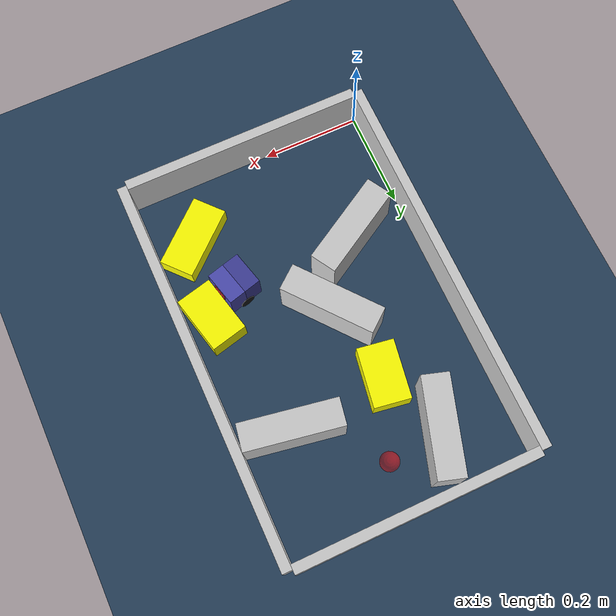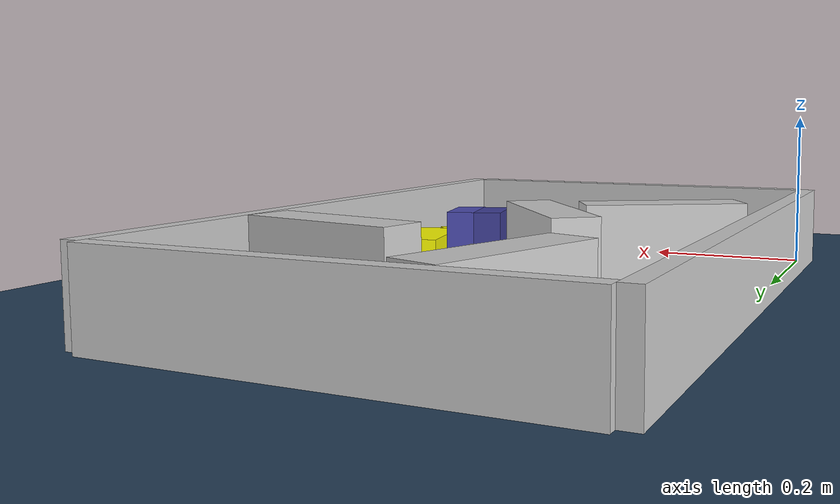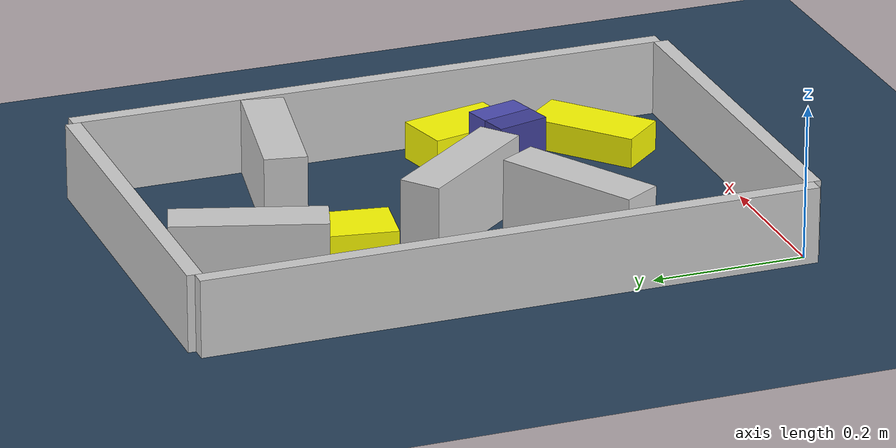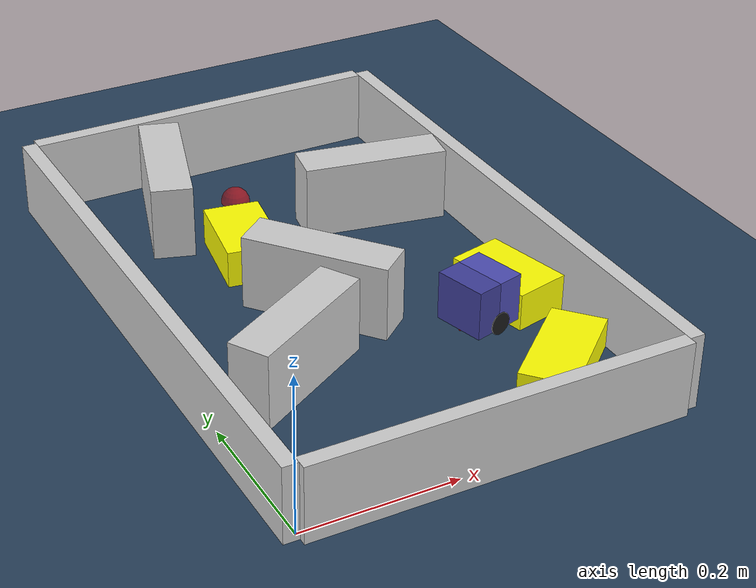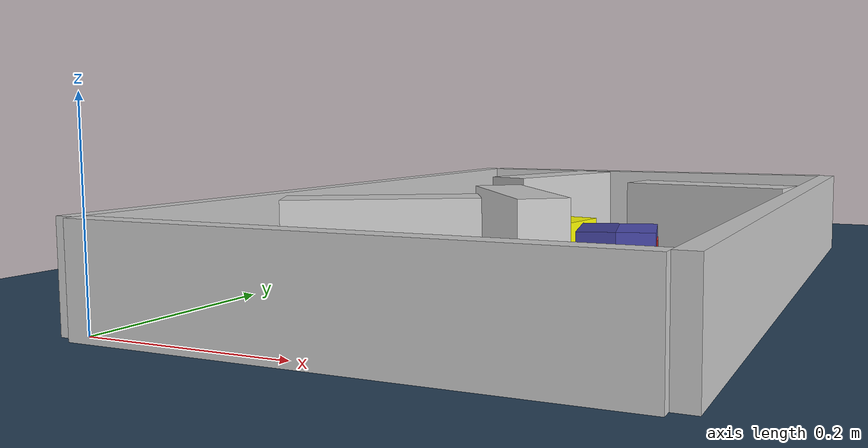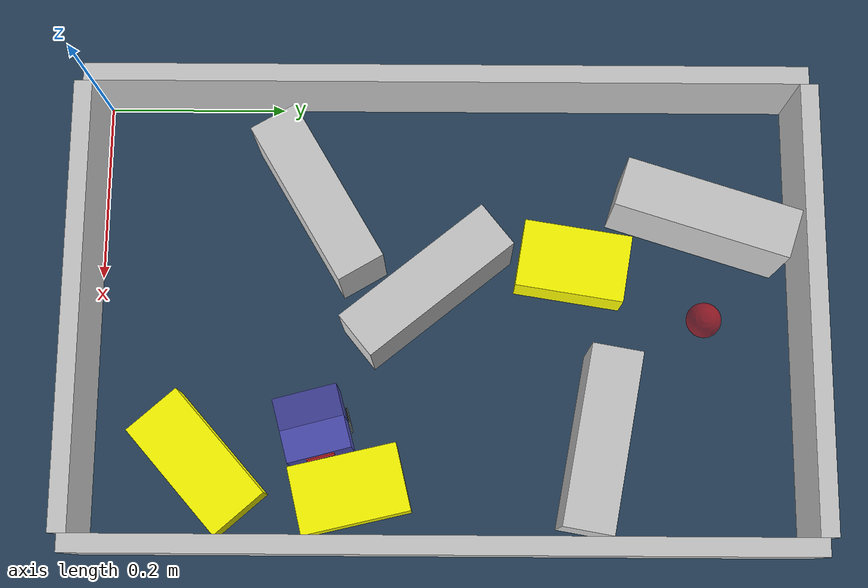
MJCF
<?xml version='1.0' encoding='utf-8'?>
<mujoco model="real_buildable">
  <compiler angle="degree" />
  <option timestep="0.002" integrator="implicitfast" iterations="100" cone="elliptic" />
  <default>
    <geom density="1" />
  </default>
  <asset>
    <texture builtin="gradient" height="3072" rgb1="0.3 0.5 0.7" rgb2="0 0 0" type="skybox" width="512" />
    <texture builtin="checker" height="300" mark="edge" markrgb="0.8 0.8 0.8" name="groundplane" rgb1="0.2 0.3 0.4" rgb2="0.1 0.2 0.3" type="2d" width="300" />
    <material name="groundplane" reflectance="0.2" texrepeat="5 5" texture="groundplane" texuniform="true" />
  </asset>
  <worldbody>
    <light dir="0 0 -1" directional="true" pos="0 0 1.5" />
    <geom name="floor" type="plane" condim="4" friction="0.5 0.005 0.001" material="groundplane" size="0 0 0.05" />
    <body name="walls">
      <geom name="wall_boundary_left" type="box" condim="4" friction="1.0 0.005 0.0001" rgba="0.8 0.8 0.8 1" pos="-0.010000 0.387500 0.050000" euler="0 0 0.000000" size="0.010000 0.397500 0.050000" />
      <geom name="wall_boundary_right" type="box" condim="4" friction="1.0 0.005 0.0001" rgba="0.8 0.8 0.8 1" pos="0.500000 0.387500 0.050000" euler="0 0 0.000000" size="0.010000 0.397500 0.050000" />
      <geom name="wall_boundary_bottom" type="box" condim="4" friction="1.0 0.005 0.0001" rgba="0.8 0.8 0.8 1" pos="0.245000 -0.010000 0.050000" euler="0 0 0.000000" size="0.245000 0.010000 0.050000" />
      <geom name="wall_boundary_top" type="box" condim="4" friction="1.0 0.005 0.0001" rgba="0.8 0.8 0.8 1" pos="0.245000 0.785000 0.050000" euler="0 0 0.000000" size="0.245000 0.010000 0.050000" />
      <geom name="wall_inner_1" type="box" condim="4" friction="1.0 0.005 0.0001" rgba="0.8 0.8 0.8 1" pos="0.124435 0.248392 0.050000" euler="0 0 30.483484" size="0.097500 0.027500 0.050000" />
      <geom name="wall_inner_2" type="box" condim="4" friction="1.0 0.005 0.0001" rgba="0.8 0.8 0.8 1" pos="0.221052 0.368219 0.050000" euler="0 0 -51.091054" size="0.097500 0.027500 0.050000" />
      <geom name="wall_inner_3" type="box" condim="4" friction="1.0 0.005 0.0001" rgba="0.8 0.8 0.8 1" pos="0.389000 0.554000 0.050000" euler="0 0 169.900000" size="0.097500 0.027500 0.050000" />
      <geom name="wall_inner_4" type="box" condim="4" friction="1.0 0.005 0.0001" rgba="0.8 0.8 0.8 1" pos="0.140000 0.671000 0.050000" euler="0 0 72.500000" size="0.097500 0.027500 0.050000" />
    </body>
    <body name="car" pos="0.37307877193951461 0.24741283493073193 0.01" quat="0.99171061167532248 0 0 0.12849148878644773">
      <freejoint name="car_freejoint" />
      <inertial pos="0 0 0.0375" mass="0.35" diaginertia="0.000266 0.000266 0.000286" />
      <geom name="front_chassis_collision" type="box" pos="0.0175 0 0.0375" size="0.0175 0.035 0.0325" rgba="0.3 0.3 0.7 1" />
      <geom name="rear_chassis_collision" type="box" pos="-0.0175 0 0.0375" size="0.0175 0.035 0.0325" rgba="0.25 0.25 0.6 1" />
      <geom name="front_marker" type="box" pos="0.034 0 0.0505" size="0.002 0.015 0.01" rgba="1 0.2 0.2 1" contype="0" conaffinity="0" />
      <body name="rear_support_body" pos="-0.03 0 0.0025">
        <joint name="rear_caster_joint" type="ball" damping="0.0001" />
        <inertial pos="0 0 0" mass="0.025" diaginertia="0.000001 0.000001 0.000001" />
        <geom name="rear_support" type="sphere" pos="0 0 0" size="0.0025" friction="0 0 0" rgba="0.7 0.1 0.1 1" />
      </body>
      <body name="front_support_body" pos="0.03 0 0.0025">
        <joint name="front_caster_joint" type="ball" damping="0.0001" />
        <inertial pos="0 0 0" mass="0.025" diaginertia="0.000001 0.000001 0.000001" />
        <geom name="front_support" type="sphere" pos="0 0 0" size="0.0025" friction="0 0 0" rgba="0.1 0.7 0.1 1" />
      </body>
      <body name="left_wheel" pos="0 0.0375 0.015">
        <inertial pos="0 0 0" mass="0.05" diaginertia="0.000003 0.000006 0.000003" />
        <joint name="left_wheel_joint" type="hinge" axis="0 1 0" damping="0.01" armature="0.0001" />
        <geom name="left_wheel_collision" type="cylinder" size="0.015 0.0005" euler="90 0 0" rgba="0.1 0.1 0.1 1" />
      </body>
      <body name="right_wheel" pos="0 -0.0375 0.015">
        <inertial pos="0 0 0" mass="0.05" diaginertia="0.000003 0.000006 0.000003" />
        <joint name="right_wheel_joint" type="hinge" axis="0 1 0" damping="0.01" armature="0.0001" />
        <geom name="right_wheel_collision" type="cylinder" size="0.015 0.0005" euler="90 0 0" rgba="0.1 0.1 0.1 1" />
      </body>
    </body>
    <body name="obstacle_0_movable">
      <geom name="obstacle_0_movable" condim="4" pos="0.43980687843245642 0.28589676806350139 0.025000000000000001" friction="1 0.005 0.0001" rgba="1 1 0 1" size="0.037500 0.060000 0.025000" type="box" mass="0.1" quat="0.9933336611777337 0 0 0.11527461807023819" />
      <joint type="free" />
    </body>
    <body name="obstacle_1_movable">
      <geom name="obstacle_1_movable" condim="4" pos="0.18800000000000044 0.52999999999999992 0.025000000000000001" friction="1 0.005 0.0001" rgba="1 1 0 1" size="0.037500 0.060000 0.025000" type="box" mass="0.1" quat="0.99684848566643047 0 0 -0.079329040234609446" />
      <joint type="free" />
    </body>
    <body name="obstacle_2_movable">
      <geom name="obstacle_2_movable" condim="4" pos="0.41050999999999976 0.11782400000000007 0.02" friction="1 0.005 0.0001" rgba="1 1 0 1" size="0.035000 0.075000 0.020000" type="box" mass="0.1" quat="0.41208953690915595 0 0 0.91114335511487843" />
      <joint type="free" />
    </body>
    <site name="goal" type="sphere" pos="0.245000 0.680000 0.0" size="0.02" rgba="1 0 0 0.5" />
  </worldbody>
  <actuator>
    <velocity name="left_wheel_drive" joint="left_wheel_joint" ctrlrange="-25 25" kv="0.75" forcerange="-0.5 0.5" />
    <velocity name="right_wheel_drive" joint="right_wheel_joint" ctrlrange="-25 25" kv="0.75" forcerange="-0.5 0.5" />
  </actuator>
</mujoco>
